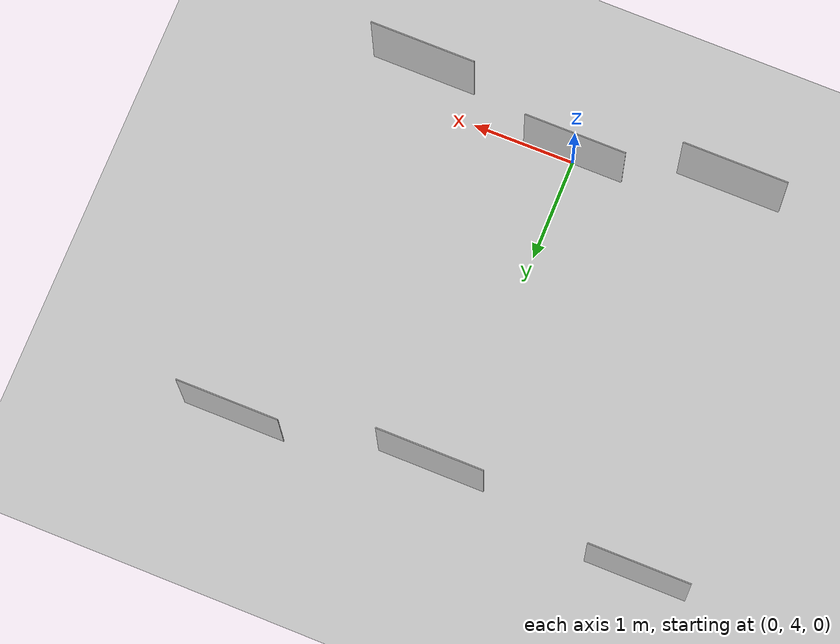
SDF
<sdf version="1.6">
 <world name="default">
  <light name="sun" type="directional">
   <pose>0 0 10 0 -0 0</pose>
   <diffuse>0.8 0.8 0.8 1</diffuse>
   <specular>0.2 0.2 0.2 1</specular>
   <attenuation>
    <range>1000</range>
    <constant>0.9</constant>
    <linear>0.01</linear>
    <quadratic>0.001</quadratic>
   </attenuation>
   <direction>-0.5 0.1 -0.9</direction>
  </light>
  <model name="ground_plane">
   <static>1</static>
   <link name="link">
    <collision name="collision">
     <geometry><plane><normal>0 0 1</normal><size>100 100</size></plane></geometry>
     <surface>
      <contact><collide_bitmask>65535</collide_bitmask></contact>
      <friction><ode><mu>100</mu><mu2>50</mu2></ode></friction>
     </surface>
    </collision>
    <visual name="visual">
     <cast_shadows>0</cast_shadows>
     <geometry><plane><normal>0 0 1</normal><size>100 100</size></plane></geometry>
     <material>
      <script><uri>file://media/materials/scripts/gazebo.material</uri><name>Gazebo/Grey</name></script>
     </material>
    </visual>
   </link>
  </model>
  <gravity>0 0 -9.8</gravity>
  <magnetic_field>6e-06 2.3e-05 -4.2e-05</magnetic_field>
  <atmosphere type="adiabatic"/>
  <physics name="default_physics" default="0" type="ode">
   <max_step_size>0.001</max_step_size>
   <real_time_factor>1</real_time_factor>
   <real_time_update_rate>1000</real_time_update_rate>
  </physics>
  <scene><ambient>0.4 0.4 0.4 1</ambient><background>0.7 0.7 0.7 1</background><shadows>1</shadows></scene>
  <audio><device>default</device></audio>
  <spherical_coordinates>
   <surface_model>EARTH_WGS84</surface_model>
   <latitude_deg>0</latitude_deg>
   <longitude_deg>0</longitude_deg>
   <elevation>0</elevation>
   <heading_deg>0</heading_deg>
  </spherical_coordinates>
  <model name="Apriltag36_11_00001">
   <link name="main">
    <visual name="main_Visual">
     <geometry><box><size>1 1 0.01</size></box></geometry>
     <material>
      <script>
       <uri>model://Apriltag36_11_00001/materials/scripts</uri>
       <uri>model://Apriltag36_11_00001/materials/textures</uri>
       <name>Apriltag36_11_00001</name>
      </script>
     </material>
    </visual>
   </link>
   <static>1</static>
   <pose>2 7.5 0.5 1.57 -0 0</pose>
  </model>
  <model name="Apriltag36_11_00002">
   <link name="main">
    <visual name="main_Visual">
     <geometry><box><size>1 1 0.01</size></box></geometry>
     <material>
      <script>
       <uri>model://Apriltag36_11_00002/materials/scripts</uri>
       <uri>model://Apriltag36_11_00002/materials/textures</uri>
       <name>Apriltag36_11_00002</name>
      </script>
     </material>
    </visual>
   </link>
   <static>1</static>
   <pose>0 7.5 2 1.57 -0 0</pose>
  </model>
  <model name="Apriltag36_11_00003">
   <link name="main">
    <visual name="main_Visual">
     <geometry><box><size>1 1 0.01</size></box></geometry>
     <material>
      <script>
       <uri>model://Apriltag36_11_00003/materials/scripts</uri>
       <uri>model://Apriltag36_11_00003/materials/textures</uri>
       <name>Apriltag36_11_00003</name>
      </script>
     </material>
    </visual>
   </link>
   <static>1</static>
   <pose>-2 7.5 0.5 1.57 -0 0</pose>
  </model>
  <model name="Apriltag36_11_00000">
   <link name="main">
    <visual name="main_Visual">
     <geometry><box><size>1 1 0.01</size></box></geometry>
     <material>
      <script>
       <uri>model://Apriltag36_11_00000/materials/scripts</uri>
       <uri>model://Apriltag36_11_00000/materials/textures</uri>
       <name>Apriltag36_11_00000</name>
      </script>
     </material>
    </visual>
   </link>
   <static>1</static>
   <pose>0 4 0.5 1.57 -0 0</pose>
  </model>
  <model name="Apriltag36_11_00004">
   <link name="main">
    <visual name="main_Visual">
     <geometry><box><size>1 1 0.01</size></box></geometry>
     <material>
      <script>
       <uri>model://Apriltag36_11_00004/materials/scripts</uri>
       <uri>model://Apriltag36_11_00004/materials/textures</uri>
       <name>Apriltag36_11_00004</name>
      </script>
     </material>
    </visual>
   </link>
   <static>1</static>
   <pose>1.5 4 1.5 1.57 -0 0</pose>
  </model>
  <model name="Apriltag36_11_00005">
   <link name="main">
    <visual name="main_Visual">
     <geometry><box><size>1 1 0.01</size></box></geometry>
     <material>
      <script>
       <uri>model://Apriltag36_11_00005/materials/scripts</uri>
       <uri>model://Apriltag36_11_00005/materials/textures</uri>
       <name>Apriltag36_11_00005</name>
      </script>
     </material>
    </visual>
   </link>
   <static>1</static>
   <pose>-1.5 4 1.5 1.57 -0 0</pose>
  </model>
 </world>
</sdf>
